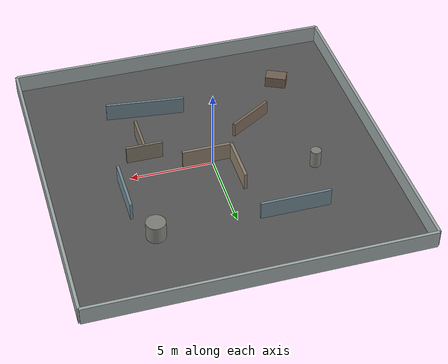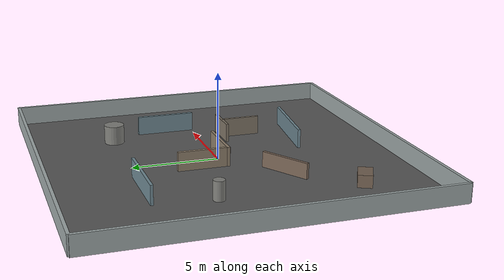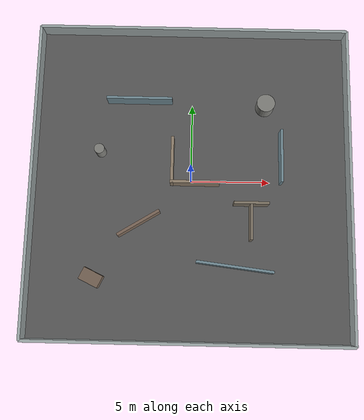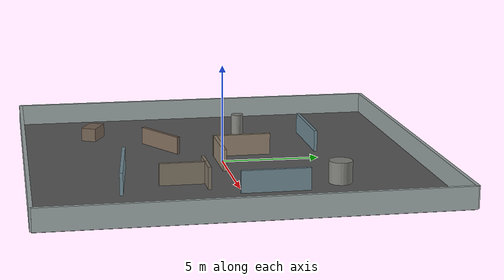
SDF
<?xml version="1.0" ?>
<sdf version="1.6">
  <world name="odin_rescue_20x20_b">
    <plugin name="gazebo_ros_init" filename="libgazebo_ros_init.so"/>
    <plugin name="gazebo_ros_factory" filename="libgazebo_ros_factory.so"/>

    <include>
      <uri>model://sun</uri>
    </include>

    <model name="flat_floor">
      <static>true</static>
      <link name="link">
        <collision name="collision">
          <geometry>
            <box>
              <size>20.0 20.0 0.04</size>
            </box>
          </geometry>
          <pose>0 0 -0.02 0 0 0</pose>
        </collision>
        <visual name="visual">
          <geometry>
            <box>
              <size>20.0 20.0 0.04</size>
            </box>
          </geometry>
          <pose>0 0 -0.02 0 0 0</pose>
          <material>
            <ambient>0.34 0.34 0.34 1</ambient>
            <diffuse>0.34 0.34 0.34 1</diffuse>
          </material>
        </visual>
      </link>
    </model>

    <model name="outer_wall_north">
      <static>true</static>
      <pose>0 10 0.55 0 0 0</pose>
      <link name="link">
        <collision name="collision"><geometry><box><size>20.0 0.18 1.1</size></box></geometry></collision>
        <visual name="visual"><geometry><box><size>20.0 0.18 1.1</size></box></geometry><material><ambient>0.62 0.66 0.66 1</ambient><diffuse>0.62 0.66 0.66 1</diffuse></material></visual>
      </link>
    </model>

    <model name="outer_wall_south">
      <static>true</static>
      <pose>0 -10 0.55 0 0 0</pose>
      <link name="link">
        <collision name="collision"><geometry><box><size>20.0 0.18 1.1</size></box></geometry></collision>
        <visual name="visual"><geometry><box><size>20.0 0.18 1.1</size></box></geometry><material><ambient>0.62 0.66 0.66 1</ambient><diffuse>0.62 0.66 0.66 1</diffuse></material></visual>
      </link>
    </model>

    <model name="outer_wall_east">
      <static>true</static>
      <pose>10 0 0.55 0 0 0</pose>
      <link name="link">
        <collision name="collision"><geometry><box><size>0.18 20.0 1.1</size></box></geometry></collision>
        <visual name="visual"><geometry><box><size>0.18 20.0 1.1</size></box></geometry><material><ambient>0.62 0.66 0.66 1</ambient><diffuse>0.62 0.66 0.66 1</diffuse></material></visual>
      </link>
    </model>

    <model name="outer_wall_west">
      <static>true</static>
      <pose>-10 0 0.55 0 0 0</pose>
      <link name="link">
        <collision name="collision"><geometry><box><size>0.18 20.0 1.1</size></box></geometry></collision>
        <visual name="visual"><geometry><box><size>0.18 20.0 1.1</size></box></geometry><material><ambient>0.62 0.66 0.66 1</ambient><diffuse>0.62 0.66 0.66 1</diffuse></material></visual>
      </link>
    </model>

    <model name="north_short_wall">
      <static>true</static>
      <pose>-3.4 5.2 0.55 0 0 0</pose>
      <link name="link">
        <collision name="collision"><geometry><box><size>4.2 0.16 1.1</size></box></geometry></collision>
        <visual name="visual"><geometry><box><size>4.2 0.16 1.1</size></box></geometry><material><ambient>0.44 0.54 0.58 1</ambient><diffuse>0.44 0.54 0.58 1</diffuse></material></visual>
      </link>
    </model>

    <model name="east_short_wall">
      <static>true</static>
      <pose>5.7 1.6 0.55 0 0 1.5708</pose>
      <link name="link">
        <collision name="collision"><geometry><box><size>3.4 0.16 1.1</size></box></geometry></collision>
        <visual name="visual"><geometry><box><size>3.4 0.16 1.1</size></box></geometry><material><ambient>0.44 0.54 0.58 1</ambient><diffuse>0.44 0.54 0.58 1</diffuse></material></visual>
      </link>
    </model>

    <model name="south_short_wall">
      <static>true</static>
      <pose>2.8 -5.4 0.55 0 0 -0.12</pose>
      <link name="link">
        <collision name="collision"><geometry><box><size>4.8 0.16 1.1</size></box></geometry></collision>
        <visual name="visual"><geometry><box><size>4.8 0.16 1.1</size></box></geometry><material><ambient>0.44 0.54 0.58 1</ambient><diffuse>0.44 0.54 0.58 1</diffuse></material></visual>
      </link>
    </model>

    <model name="central_landmark_l_vertical">
      <static>true</static>
      <pose>-1.2 1.2 0.55 0 0 0</pose>
      <link name="link">
        <collision name="collision"><geometry><box><size>0.18 3.0 1.1</size></box></geometry></collision>
        <visual name="visual"><geometry><box><size>0.18 3.0 1.1</size></box></geometry><material><ambient>0.56 0.50 0.42 1</ambient><diffuse>0.56 0.50 0.42 1</diffuse></material></visual>
      </link>
    </model>

    <model name="central_landmark_l_horizontal">
      <static>true</static>
      <pose>0.25 -0.2 0.55 0 0 0</pose>
      <link name="link">
        <collision name="collision"><geometry><box><size>3.1 0.18 1.1</size></box></geometry></collision>
        <visual name="visual"><geometry><box><size>3.1 0.18 1.1</size></box></geometry><material><ambient>0.56 0.50 0.42 1</ambient><diffuse>0.56 0.50 0.42 1</diffuse></material></visual>
      </link>
    </model>

    <model name="east_landmark_t_vertical">
      <static>true</static>
      <pose>3.8 -2.6 0.55 0 0 0</pose>
      <link name="link">
        <collision name="collision"><geometry><box><size>0.16 2.3 1.1</size></box></geometry></collision>
        <visual name="visual"><geometry><box><size>0.16 2.3 1.1</size></box></geometry><material><ambient>0.50 0.46 0.40 1</ambient><diffuse>0.50 0.46 0.40 1</diffuse></material></visual>
      </link>
    </model>

    <model name="east_landmark_t_horizontal">
      <static>true</static>
      <pose>3.8 -1.45 0.55 0 0 0</pose>
      <link name="link">
        <collision name="collision"><geometry><box><size>2.2 0.16 1.1</size></box></geometry></collision>
        <visual name="visual"><geometry><box><size>2.2 0.16 1.1</size></box></geometry><material><ambient>0.50 0.46 0.40 1</ambient><diffuse>0.50 0.46 0.40 1</diffuse></material></visual>
      </link>
    </model>

    <model name="diagonal_debris_marker">
      <static>true</static>
      <pose>-3.2 -2.8 0.45 0 0 0.55</pose>
      <link name="link">
        <collision name="collision"><geometry><box><size>3.0 0.18 0.9</size></box></geometry></collision>
        <visual name="visual"><geometry><box><size>3.0 0.18 0.9</size></box></geometry><material><ambient>0.48 0.40 0.34 1</ambient><diffuse>0.48 0.40 0.34 1</diffuse></material></visual>
      </link>
    </model>

    <model name="column_west_small">
      <static>true</static>
      <pose>-5.8 1.8 0.55 0 0 0</pose>
      <link name="link">
        <collision name="collision"><geometry><cylinder><radius>0.32</radius><length>1.1</length></cylinder></geometry></collision>
        <visual name="visual"><geometry><cylinder><radius>0.32</radius><length>1.1</length></cylinder></geometry><material><ambient>0.50 0.50 0.48 1</ambient><diffuse>0.50 0.50 0.48 1</diffuse></material></visual>
      </link>
    </model>

    <model name="column_northeast_large">
      <static>true</static>
      <pose>4.7 5.0 0.55 0 0 0</pose>
      <link name="link">
        <collision name="collision"><geometry><cylinder><radius>0.58</radius><length>1.1</length></cylinder></geometry></collision>
        <visual name="visual"><geometry><cylinder><radius>0.58</radius><length>1.1</length></cylinder></geometry><material><ambient>0.50 0.50 0.48 1</ambient><diffuse>0.50 0.50 0.48 1</diffuse></material></visual>
      </link>
    </model>

    <model name="debris_box_southwest">
      <static>true</static>
      <pose>-6.0 -6.2 0.35 0 0 -0.45</pose>
      <link name="link">
        <collision name="collision"><geometry><box><size>1.3 0.8 0.7</size></box></geometry></collision>
        <visual name="visual"><geometry><box><size>1.3 0.8 0.7</size></box></geometry><material><ambient>0.45 0.38 0.32 1</ambient><diffuse>0.45 0.38 0.32 1</diffuse></material></visual>
      </link>
    </model>
  </world>
</sdf>
